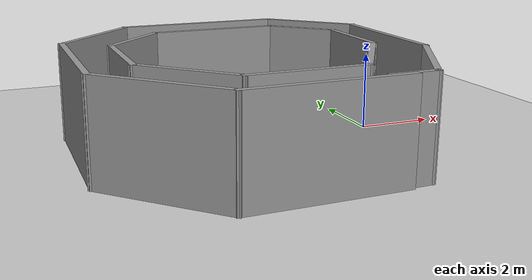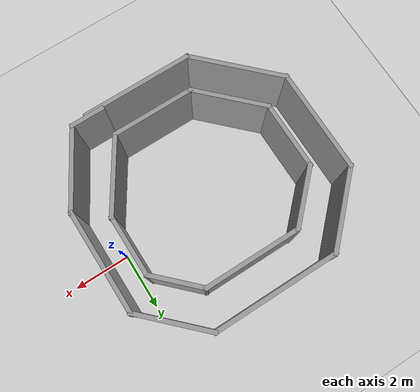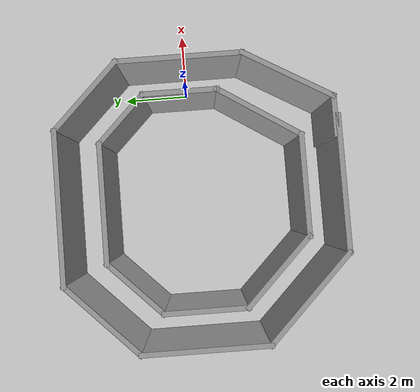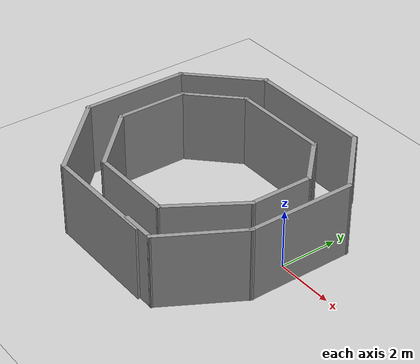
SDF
<sdf version="1.6">
 <world name="default">
  <light name="sun" type="directional">
   <pose>0 0 10 0 -0 0</pose>
   <diffuse>0.8 0.8 0.8 1</diffuse>
   <specular>0.2 0.2 0.2 1</specular>
   <attenuation>
    <range>1000</range>
    <constant>0.9</constant>
    <linear>0.01</linear>
    <quadratic>0.001</quadratic>
   </attenuation>
   <direction>-0.5 0.1 -0.9</direction>
  </light>
  <model name="ground_plane">
   <static>1</static>
   <link name="link">
    <collision name="collision">
     <geometry><plane><normal>0 0 1</normal><size>100 100</size></plane></geometry>
     <surface>
      <contact><collide_bitmask>65535</collide_bitmask></contact>
      <friction><ode><mu>100</mu><mu2>50</mu2></ode></friction>
     </surface>
    </collision>
    <visual name="visual">
     <cast_shadows>0</cast_shadows>
     <geometry><plane><normal>0 0 1</normal><size>100 100</size></plane></geometry>
     <material>
      <script><uri>file://media/materials/scripts/gazebo.material</uri><name>Gazebo/Grey</name></script>
     </material>
    </visual>
   </link>
  </model>
  <gravity>0 0 -9.8</gravity>
  <magnetic_field>6e-06 2.3e-05 -4.2e-05</magnetic_field>
  <atmosphere type="adiabatic"/>
  <physics name="default_physics" default="0" type="ode">
   <max_step_size>0.001</max_step_size>
   <real_time_factor>1</real_time_factor>
   <real_time_update_rate>1000</real_time_update_rate>
  </physics>
  <scene><ambient>0.4 0.4 0.4 1</ambient><background>0.7 0.7 0.7 1</background><shadows>1</shadows></scene>
  <audio><device>default</device></audio>
  <spherical_coordinates>
   <surface_model>EARTH_WGS84</surface_model>
   <latitude_deg>0</latitude_deg>
   <longitude_deg>0</longitude_deg>
   <elevation>0</elevation>
   <heading_deg>0</heading_deg>
  </spherical_coordinates>
  <model name="octagon">
   <pose>-3.48599 -0.248773 -0 0 -0 0</pose>
   <link name="Wall_10">
    <collision name="Wall_10_Collision">
     <geometry><box><size>3 0.15 2.5</size></box></geometry>
     <pose>0 0 1.25 0 -0 0</pose>
    </collision>
    <visual name="Wall_10_Visual">
     <pose>0 0 1.25 0 -0 0</pose>
     <geometry><box><size>3 0.15 2.5</size></box></geometry>
     <material>
      <script><uri>file://media/materials/scripts/gazebo.material</uri><name>Gazebo/Grey</name></script>
      <ambient>1 1 1 1</ambient>
     </material>
     <meta><layer>0</layer></meta>
    </visual>
    <pose>0.233156 -2.91909 0 0 -0 0</pose>
   </link>
   <link name="Wall_11">
    <collision name="Wall_11_Collision">
     <geometry><box><size>2.84207 0.15 2.5</size></box></geometry>
     <pose>0 0 1.25 0 -0 0</pose>
    </collision>
    <visual name="Wall_11_Visual">
     <pose>0 0 1.25 0 -0 0</pose>
     <geometry><box><size>2.84207 0.15 2.5</size></box></geometry>
     <material>
      <script><uri>file://media/materials/scripts/gazebo.material</uri><name>Gazebo/Grey</name></script>
      <ambient>1 1 1 1</ambient>
     </material>
     <meta><layer>0</layer></meta>
    </visual>
    <pose>2.38545 -1.78646 0 0 -0 0.999971</pose>
   </link>
   <link name="Wall_14">
    <collision name="Wall_14_Collision">
     <geometry><box><size>4 0.15 2.5</size></box></geometry>
     <pose>0 0 1.25 0 -0 0</pose>
    </collision>
    <visual name="Wall_14_Visual">
     <pose>0 0 1.25 0 -0 0</pose>
     <geometry><box><size>4 0.15 2.5</size></box></geometry>
     <material>
      <script><uri>file://media/materials/scripts/gazebo.material</uri><name>Gazebo/Grey</name></script>
      <ambient>1 1 1 1</ambient>
     </material>
     <meta><layer>0</layer></meta>
    </visual>
    <pose>0.191942 -3.99203 0 0 -0 3.14159</pose>
   </link>
   <link name="Wall_15">
    <collision name="Wall_15_Collision">
     <geometry><box><size>3.5 0.15 2.5</size></box></geometry>
     <pose>0 0 1.25 0 -0 0</pose>
    </collision>
    <visual name="Wall_15_Visual">
     <pose>0 0 1.25 0 -0 0</pose>
     <geometry><box><size>3.5 0.15 2.5</size></box></geometry>
     <material>
      <script><uri>file://media/materials/scripts/gazebo.material</uri><name>Gazebo/Grey</name></script>
      <ambient>1 1 1 1</ambient>
     </material>
     <meta><layer>0</layer></meta>
    </visual>
    <pose>-2.91746 -2.80763 0 0 -0 2.35619</pose>
   </link>
   <link name="Wall_16">
    <collision name="Wall_16_Collision">
     <geometry><box><size>3.75 0.15 2.5</size></box></geometry>
     <pose>0 0 1.25 0 -0 0</pose>
    </collision>
    <visual name="Wall_16_Visual">
     <pose>0 0 1.25 0 -0 0</pose>
     <geometry><box><size>3.75 0.15 2.5</size></box></geometry>
     <material>
      <script><uri>file://media/materials/scripts/gazebo.material</uri><name>Gazebo/Grey</name></script>
      <ambient>1 1 1 1</ambient>
     </material>
     <meta><layer>0</layer></meta>
    </visual>
    <pose>-4.10187 0.176777 0 0 -0 1.5708</pose>
   </link>
   <link name="Wall_17">
    <collision name="Wall_17_Collision">
     <geometry><box><size>3 0.15 2.5</size></box></geometry>
     <pose>0 0 1.25 0 -0 0</pose>
    </collision>
    <visual name="Wall_17_Visual">
     <pose>0 0 1.25 0 -0 0</pose>
     <geometry><box><size>3 0.15 2.5</size></box></geometry>
     <material>
      <script><uri>file://media/materials/scripts/gazebo.material</uri><name>Gazebo/Grey</name></script>
      <ambient>1 1 1 1</ambient>
     </material>
     <meta><layer>0</layer></meta>
    </visual>
    <pose>-3.09424 2.9844 0 0 -0 0.785398</pose>
   </link>
   <link name="Wall_18">
    <collision name="Wall_18_Collision">
     <geometry><box><size>4.5 0.15 2.5</size></box></geometry>
     <pose>0 0 1.25 0 -0 0</pose>
    </collision>
    <visual name="Wall_18_Visual">
     <pose>0 0 1.25 0 -0 0</pose>
     <geometry><box><size>4.5 0.15 2.5</size></box></geometry>
     <material>
      <script><uri>file://media/materials/scripts/gazebo.material</uri><name>Gazebo/Grey</name></script>
      <ambient>1 1 1 1</ambient>
     </material>
     <meta><layer>0</layer></meta>
    </visual>
    <pose>0.088389 3.99203 0 0 -0 0</pose>
   </link>
   <link name="Wall_19">
    <collision name="Wall_19_Collision">
     <geometry><box><size>2.75 0.15 2.5</size></box></geometry>
     <pose>0 0 1.25 0 -0 0</pose>
    </collision>
    <visual name="Wall_19_Visual">
     <pose>0 0 1.25 0 -0 0</pose>
     <geometry><box><size>2.75 0.15 2.5</size></box></geometry>
     <material>
      <script><uri>file://media/materials/scripts/gazebo.material</uri><name>Gazebo/Grey</name></script>
      <ambient>1 1 1 1</ambient>
     </material>
     <meta><layer>0</layer></meta>
    </visual>
    <pose>3.18263 3.07279 0 0 -0 -0.785398</pose>
   </link>
   <link name="Wall_20">
    <collision name="Wall_20_Collision">
     <geometry><box><size>3.75 0.15 2.5</size></box></geometry>
     <pose>0 0 1.25 0 -0 0</pose>
    </collision>
    <visual name="Wall_20_Visual">
     <pose>0 0 1.25 0 -0 0</pose>
     <geometry><box><size>3.75 0.15 2.5</size></box></geometry>
     <material>
      <script><uri>file://media/materials/scripts/gazebo.material</uri><name>Gazebo/Grey</name></script>
      <ambient>1 1 1 1</ambient>
     </material>
     <meta><layer>0</layer></meta>
    </visual>
    <pose>4.10187 0.353553 0 0 -0 -1.5708</pose>
   </link>
   <link name="Wall_21">
    <collision name="Wall_21_Collision">
     <geometry><box><size>3 0.15 2.5</size></box></geometry>
     <pose>0 0 1.25 0 -0 0</pose>
    </collision>
    <visual name="Wall_21_Visual">
     <pose>0 0 1.25 0 -0 0</pose>
     <geometry><box><size>3 0.15 2.5</size></box></geometry>
     <material>
      <script><uri>file://media/materials/scripts/gazebo.material</uri><name>Gazebo/Grey</name></script>
      <ambient>1 1 1 1</ambient>
     </material>
     <meta><layer>0</layer></meta>
    </visual>
    <pose>3.38937 -2.68053 0 0 -0 -2.0944</pose>
   </link>
   <link name="Wall_22">
    <collision name="Wall_22_Collision">
     <geometry><box><size>1.25 0.15 2.5</size></box></geometry>
     <pose>0 0 1.25 0 -0 0</pose>
    </collision>
    <visual name="Wall_22_Visual">
     <pose>0 0 1.25 0 -0 0</pose>
     <geometry><box><size>1.25 0.15 2.5</size></box></geometry>
     <material>
      <script><uri>file://media/materials/scripts/gazebo.material</uri><name>Gazebo/Grey</name></script>
      <ambient>1 1 1 1</ambient>
     </material>
     <meta><layer>0</layer></meta>
    </visual>
    <pose>2.12687 -3.91462 0 0 -0 3.14159</pose>
   </link>
   <link name="Wall_4">
    <collision name="Wall_4_Collision">
     <geometry><box><size>2.25 0.15 2.5</size></box></geometry>
     <pose>0 0 1.25 0 -0 0</pose>
    </collision>
    <visual name="Wall_4_Visual">
     <pose>0 0 1.25 0 -0 0</pose>
     <geometry><box><size>2.25 0.15 2.5</size></box></geometry>
     <material>
      <script><uri>file://media/materials/scripts/gazebo.material</uri><name>Gazebo/Grey</name></script>
      <ambient>1 1 1 1</ambient>
     </material>
     <meta><layer>0</layer></meta>
    </visual>
    <pose>3.11275 0.396163 0 0 -0 1.5708</pose>
   </link>
   <link name="Wall_5">
    <collision name="Wall_5_Collision">
     <geometry><box><size>2 0.15 2.5</size></box></geometry>
     <pose>0 0 1.25 0 -0 0</pose>
    </collision>
    <visual name="Wall_5_Visual">
     <pose>0 0 1.25 0 -0 0</pose>
     <geometry><box><size>2 0.15 2.5</size></box></geometry>
     <material>
      <script><uri>file://media/materials/scripts/gazebo.material</uri><name>Gazebo/Grey</name></script>
      <ambient>1 1 1 1</ambient>
     </material>
     <meta><layer>0</layer></meta>
    </visual>
    <pose>2.45868 2.10024 0 0 -0 2.35619</pose>
   </link>
   <link name="Wall_6">
    <collision name="Wall_6_Collision">
     <geometry><box><size>3.5 0.15 2.5</size></box></geometry>
     <pose>0 0 1.25 0 -0 0</pose>
    </collision>
    <visual name="Wall_6_Visual">
     <pose>0 0 1.25 0 -0 0</pose>
     <geometry><box><size>3.5 0.15 2.5</size></box></geometry>
     <material>
      <script><uri>file://media/materials/scripts/gazebo.material</uri><name>Gazebo/Grey</name></script>
      <ambient>1 1 1 1</ambient>
     </material>
     <meta><layer>0</layer></meta>
    </visual>
    <pose>0.129603 2.75431 0 0 -0 3.14159</pose>
   </link>
   <link name="Wall_7">
    <collision name="Wall_7_Collision">
     <geometry><box><size>2.25 0.15 2.5</size></box></geometry>
     <pose>0 0 1.25 0 -0 0</pose>
    </collision>
    <visual name="Wall_7_Visual">
     <pose>0 0 1.25 0 -0 0</pose>
     <geometry><box><size>2.25 0.15 2.5</size></box></geometry>
     <material>
      <script><uri>file://media/materials/scripts/gazebo.material</uri><name>Gazebo/Grey</name></script>
      <ambient>1 1 1 1</ambient>
     </material>
     <meta><layer>0</layer></meta>
    </visual>
    <pose>-2.28786 2.01185 0 0 -0 -2.35619</pose>
   </link>
   <link name="Wall_8">
    <collision name="Wall_8_Collision">
     <geometry><box><size>2.5 0.15 2.5</size></box></geometry>
     <pose>0 0 1.25 0 -0 0</pose>
    </collision>
    <visual name="Wall_8_Visual">
     <pose>0 0 1.25 0 -0 0</pose>
     <geometry><box><size>2.5 0.15 2.5</size></box></geometry>
     <material>
      <script><uri>file://media/materials/scripts/gazebo.material</uri><name>Gazebo/Grey</name></script>
      <ambient>1 1 1 1</ambient>
     </material>
     <meta><layer>0</layer></meta>
    </visual>
    <pose>-3.03032 0.094386 0 0 -0 -1.5708</pose>
   </link>
   <link name="Wall_9">
    <collision name="Wall_9_Collision">
     <geometry><box><size>2.75 0.15 2.5</size></box></geometry>
     <pose>0 0 1.25 0 -0 0</pose>
    </collision>
    <visual name="Wall_9_Visual">
     <pose>0 0 1.25 0 -0 0</pose>
     <geometry><box><size>2.75 0.15 2.5</size></box></geometry>
     <material>
      <script><uri>file://media/materials/scripts/gazebo.material</uri><name>Gazebo/Grey</name></script>
      <ambient>1 1 1 1</ambient>
     </material>
     <meta><layer>0</layer></meta>
    </visual>
    <pose>-2.11108 -1.99985 0 0 -0 -0.785398</pose>
   </link>
   <static>1</static>
  </model>
 </world>
</sdf>
